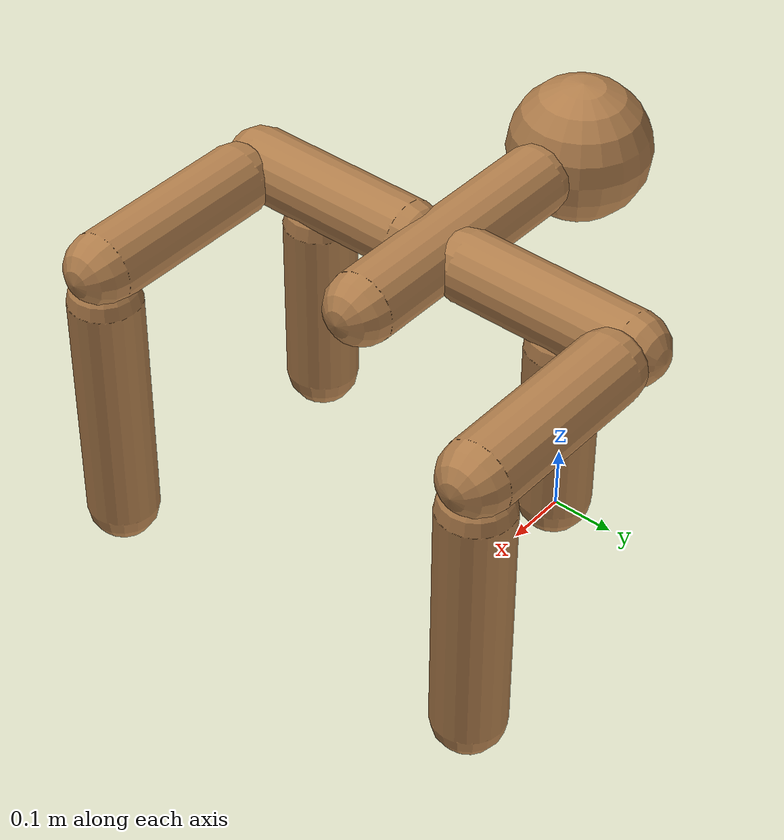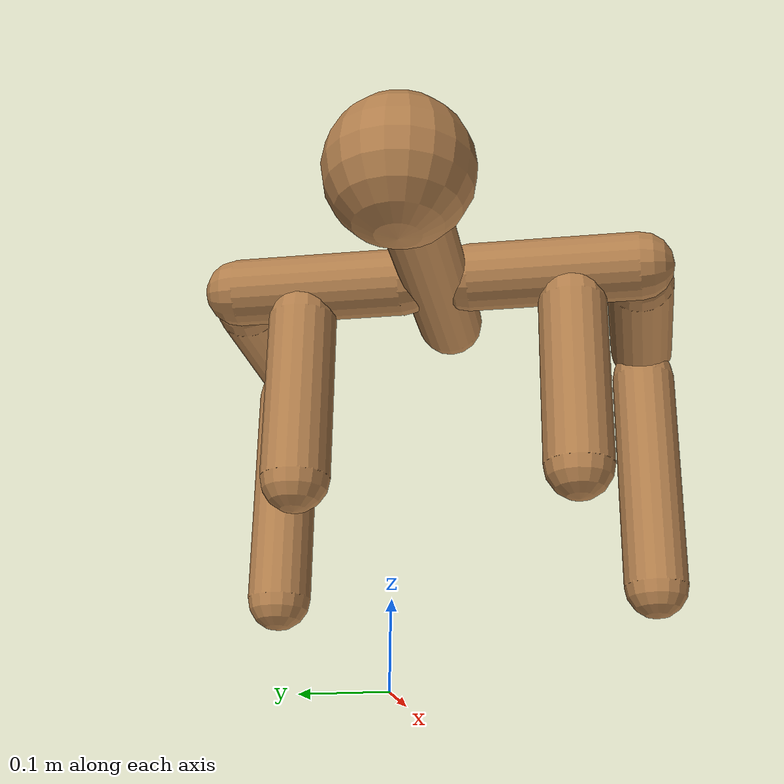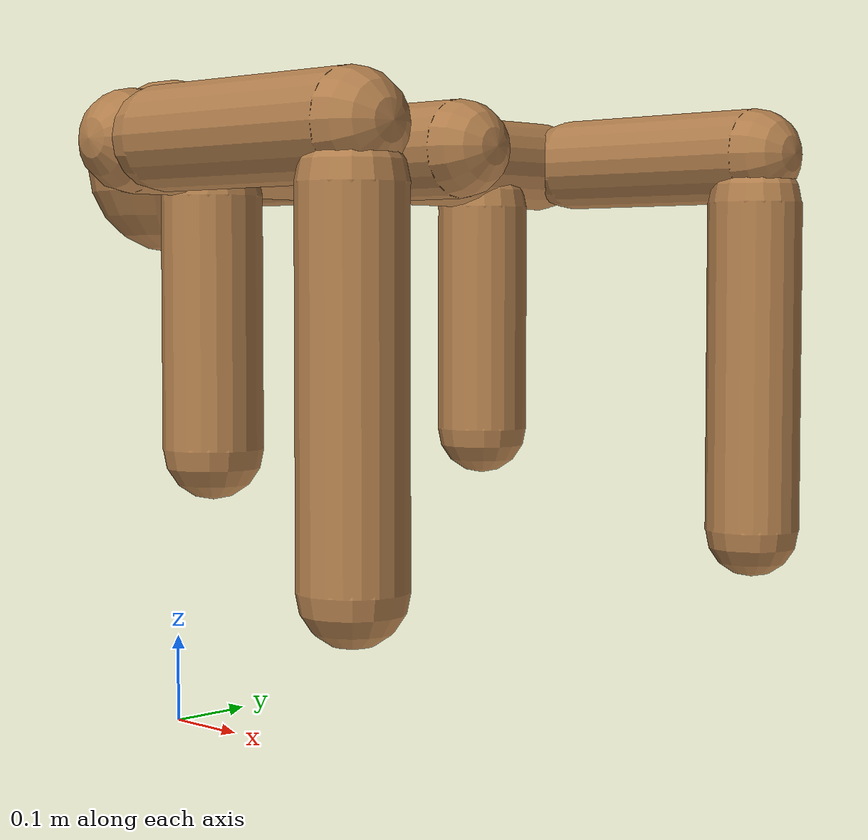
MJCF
<?xml version='1.0' encoding='UTF-8'?>
<!-- Universal Animal Template: unimal -->
<mujoco model="unimal">
  <compiler angle="degree"/>
  <size njmax="2000" nconmax="500"/>
  <option timestep=".005">
    <flag filterparent="disable"/>
  </option>
  <!-- Common defaults to make search space tractable -->
  <default>
    <!-- Define motor defaults -->
    <motor ctrlrange="-1 1" ctrllimited="true"/>
    <!-- Define joint defaults -->
    <default class="normal_joint">
      <joint type="hinge" damping="1" stiffness="1" armature="1" limited="true" range="-120 120" solimplimit="0 0.99 0.01"/>
    </default>
    <default class="walker_joint">
      <joint type="hinge" damping="0.2" stiffness="1" armature=".01" limited="true" range="-120 120" solimplimit="0 0.99 0.01"/>
    </default>
    <default class="stiff_joint">
      <joint type="hinge" damping="5" stiffness="10" armature=".01" limited="true" solimplimit="0 0.99 0.01"/>
    </default>
    <default class="free">
      <joint limited="false" damping="0" armature="0" stiffness="0"/>
    </default>
    <default class="growth_site">
      <site size="1e-6 1e-6 1e-6"/>
    </default>
    <default class="torso_growth_site">
      <site size="1e-6 1e-6 1e-6"/>
    </default>
    <default class="mirror_growth_site">
      <site size="1e-6 1e-6 1e-6"/>
    </default>
    <default class="btm_pos_site">
      <site size="1e-6 1e-6 1e-6"/>
    </default>
    <default class="box_face_site">
      <site size="1e-6 1e-6 1e-6"/>
    </default>
    <default class="imu_vel">
      <site type="box" size="0.05" rgba="1 0 0 0"/>
    </default>
    <default class="touch_site">
      <site group="3" rgba="0 0 1 .3"/>
    </default>
    <default class="food_site">
      <site material="food" size="0.15"/>
    </default>
    <!-- Define geom defaults -->
    <geom type="capsule" condim="3" friction="0.7 0.1 0.1" material="self"/>
  </default>
  <worldbody>
    <light diffuse="1 1 1" directional="true" exponent="1" pos="0 0 8" specular="0.1 0.1 0.1" dir="0 0 -1"/>
    <!-- Programatically generated xml goes here -->
    <body name="torso/0" pos="0 0 0.65">
      <joint name="root" type="free" class="free"/>
      <site name="root" class="imu_vel"/>
      <geom name="torso/0" type="sphere" size="0.1" condim="3" density="1000"/>
      <camera name="side" pos="0 -7 2" xyaxes="1 0 0 0 1 2" mode="trackcom"/>
      <site name="torso/0" class="growth_site" pos="0 0 0"/>
      <site name="torso/btm_pos/0" class="btm_pos_site" pos="0 0 -0.1"/>
      <site name="torso/touch/0" class="touch_site" size="0.11"/>
      <site name="torso/vertical/0" class="torso_growth_site" pos="0 0 -0.1"/>
      <body name="limb/12" pos="0.1 0.0 0.0">
        <joint name="limby/12" type="hinge" class="normal_joint" range="-60 0" pos="-0.05 0.0 0.0" axis="-0.0 1.0 0.0"/>
        <geom name="limb/12" type="capsule" fromto="0.0 0.0 0.0 0.35 0.0 0.0" size="0.05" density="800"/>
        <site name="limb/mid/12" class="growth_site" pos="0.2 0.0 0.0"/>
        <site name="limb/btm/12" class="growth_site" pos="0.35 0.0 0.0"/>
        <site name="limb/btm_pos/12" class="btm_pos_site" pos="0.35 0.0 0.0"/>
        <site name="limb/touch/12" class="touch_site" size="0.060000000000000005" fromto="0.0 0.0 0.0 0.35 0.0 0.0" type="capsule"/>
        <body name="limb/15" pos="0.2 0.05 0.0">
          <joint name="limby/15" type="hinge" class="normal_joint" range="-45 0" pos="0.0 -0.05 0.0" axis="0.0 0.0 1.0"/>
          <geom name="limb/15" type="capsule" fromto="0.0 0.0 0.0 0.0 0.25 0.0" size="0.05" density="800"/>
          <site name="limb/mid/15" class="mirror_growth_site" pos="0.0 0.15 0.0"/>
          <site name="limb/btm/15" class="mirror_growth_site" pos="0.0 0.25 0.0"/>
          <site name="limb/btm_pos/15" class="btm_pos_site" pos="0.0 0.25 0.0"/>
          <site name="limb/touch/15" class="touch_site" size="0.060000000000000005" fromto="0.0 0.0 0.0 0.0 0.25 0.0" type="capsule"/>
          <body name="limb/21" pos="0.05 0.25 0.0">
            <joint name="limbx/21" type="hinge" class="normal_joint" range="-60 60" pos="-0.05 0.0 0.0" axis="0.0 0.0 1.0"/>
            <joint name="limby/21" type="hinge" class="normal_joint" range="0 90" pos="-0.05 0.0 0.0" axis="-0.0 1.0 0.0"/>
            <geom name="limb/21" type="capsule" fromto="0.0 0.0 0.0 0.25 0.0 0.0" size="0.05" density="800"/>
            <site name="limb/mid/21" class="mirror_growth_site" pos="0.15 0.0 0.0"/>
            <site name="limb/btm/21" class="mirror_growth_site" pos="0.25 0.0 0.0"/>
            <site name="limb/btm_pos/21" class="btm_pos_site" pos="0.25 0.0 0.0"/>
            <site name="limb/touch/21" class="touch_site" size="0.060000000000000005" fromto="0.0 0.0 0.0 0.25 0.0 0.0" type="capsule"/>
            <body name="limb/23" pos="0.25 0.0 -0.05">
              <joint name="limbx/23" type="hinge" class="normal_joint" range="-60 30" pos="0.0 0.0 0.05" axis="1.0 0.0 0.0"/>
              <joint name="limby/23" type="hinge" class="normal_joint" range="0 60" pos="0.0 0.0 0.05" axis="0.0 1.0 0.0"/>
              <geom name="limb/23" type="capsule" fromto="0.0 0.0 0.0 0.0 0.0 -0.35" size="0.05" density="800"/>
              <site name="limb/mid/23" class="mirror_growth_site" pos="0.0 0.0 -0.2"/>
              <site name="limb/btm/23" class="mirror_growth_site" pos="0.0 0.0 -0.35"/>
              <site name="limb/btm_pos/23" class="btm_pos_site" pos="0.0 0.0 -0.4"/>
              <site name="limb/touch/23" class="touch_site" size="0.060000000000000005" fromto="0.0 0.0 0.0 0.0 0.0 -0.35" type="capsule"/>
            </body>
          </body>
          <body name="limb/25" pos="0.0 0.15 -0.05">
            <joint name="limbx/25" type="hinge" class="normal_joint" range="-60 0" pos="0.0 0.0 0.05" axis="1.0 0.0 0.0"/>
            <geom name="limb/25" type="capsule" fromto="0.0 0.0 0.0 0.0 0.0 -0.25" size="0.05" density="800"/>
            <site name="limb/mid/25" class="mirror_growth_site" pos="0.0 0.0 -0.15"/>
            <site name="limb/btm/25" class="mirror_growth_site" pos="0.0 0.0 -0.25"/>
            <site name="limb/btm_pos/25" class="btm_pos_site" pos="0.0 0.0 -0.3"/>
            <site name="limb/touch/25" class="touch_site" size="0.060000000000000005" fromto="0.0 0.0 0.0 0.0 0.0 -0.25" type="capsule"/>
          </body>
        </body>
        <body name="limb/16" pos="0.2 -0.05 0.0">
          <joint name="limby/16" type="hinge" class="normal_joint" range="-45 0" pos="0.0 0.05 0.0" axis="-0.0 0.0 -1.0"/>
          <geom name="limb/16" type="capsule" fromto="0.0 0.0 0.0 0.0 -0.25 0.0" size="0.05" density="800"/>
          <site name="limb/mid/16" class="mirror_growth_site" pos="0.0 -0.15 0.0"/>
          <site name="limb/btm/16" class="mirror_growth_site" pos="0.0 -0.25 0.0"/>
          <site name="limb/btm_pos/16" class="btm_pos_site" pos="0.0 -0.25 0.0"/>
          <site name="limb/touch/16" class="touch_site" size="0.060000000000000005" fromto="0.0 0.0 0.0 0.0 -0.25 0.0" type="capsule"/>
          <body name="limb/22" pos="0.05 -0.25 0.0">
            <joint name="limbx/22" type="hinge" class="normal_joint" range="-60 60" pos="-0.05 0.0 0.0" axis="0.0 0.0 1.0"/>
            <joint name="limby/22" type="hinge" class="normal_joint" range="0 90" pos="-0.05 0.0 0.0" axis="-0.0 1.0 0.0"/>
            <geom name="limb/22" type="capsule" fromto="0.0 0.0 0.0 0.25 0.0 0.0" size="0.05" density="800"/>
            <site name="limb/mid/22" class="mirror_growth_site" pos="0.15 0.0 0.0"/>
            <site name="limb/btm/22" class="mirror_growth_site" pos="0.25 0.0 0.0"/>
            <site name="limb/btm_pos/22" class="btm_pos_site" pos="0.25 0.0 0.0"/>
            <site name="limb/touch/22" class="touch_site" size="0.060000000000000005" fromto="0.0 0.0 0.0 0.25 0.0 0.0" type="capsule"/>
            <body name="limb/24" pos="0.25 0.0 -0.05">
              <joint name="limbx/24" type="hinge" class="normal_joint" range="-60 30" pos="0.0 0.0 0.05" axis="1.0 0.0 0.0"/>
              <joint name="limby/24" type="hinge" class="normal_joint" range="0 60" pos="0.0 0.0 0.05" axis="0.0 1.0 0.0"/>
              <geom name="limb/24" type="capsule" fromto="0.0 0.0 0.0 0.0 0.0 -0.35" size="0.05" density="800"/>
              <site name="limb/mid/24" class="mirror_growth_site" pos="0.0 0.0 -0.2"/>
              <site name="limb/btm/24" class="mirror_growth_site" pos="0.0 0.0 -0.35"/>
              <site name="limb/btm_pos/24" class="btm_pos_site" pos="0.0 0.0 -0.4"/>
              <site name="limb/touch/24" class="touch_site" size="0.060000000000000005" fromto="0.0 0.0 0.0 0.0 0.0 -0.35" type="capsule"/>
            </body>
          </body>
          <body name="limb/26" pos="0.0 -0.15 -0.05">
            <joint name="limbx/26" type="hinge" class="normal_joint" range="-60 0" pos="0.0 0.0 0.05" axis="1.0 0.0 0.0"/>
            <geom name="limb/26" type="capsule" fromto="0.0 0.0 0.0 0.0 0.0 -0.25" size="0.05" density="800"/>
            <site name="limb/mid/26" class="mirror_growth_site" pos="0.0 0.0 -0.15"/>
            <site name="limb/btm/26" class="mirror_growth_site" pos="0.0 0.0 -0.25"/>
            <site name="limb/btm_pos/26" class="btm_pos_site" pos="0.0 0.0 -0.3"/>
            <site name="limb/touch/26" class="touch_site" size="0.060000000000000005" fromto="0.0 0.0 0.0 0.0 0.0 -0.25" type="capsule"/>
          </body>
        </body>
      </body>
    </body>
  </worldbody>
  <actuator>
    <motor joint="limby/12" gear="300" name="limby/12"/>
    <motor joint="limby/15" gear="200" name="limby/15"/>
    <motor joint="limbx/21" gear="150" name="limbx/21"/>
    <motor joint="limby/21" gear="300" name="limby/21"/>
    <motor joint="limbx/23" gear="150" name="limbx/23"/>
    <motor joint="limby/23" gear="150" name="limby/23"/>
    <motor joint="limbx/25" gear="300" name="limbx/25"/>
    <motor joint="limby/16" gear="200" name="limby/16"/>
    <motor joint="limbx/22" gear="150" name="limbx/22"/>
    <motor joint="limby/22" gear="300" name="limby/22"/>
    <motor joint="limbx/24" gear="150" name="limbx/24"/>
    <motor joint="limby/24" gear="150" name="limby/24"/>
    <motor joint="limbx/26" gear="300" name="limbx/26"/>
  </actuator>
  <sensor>
    <accelerometer name="torso_accel" site="root"/>
    <gyro name="torso_gyro" site="root"/>
    <velocimeter name="torso_vel" site="root"/>
    <subtreeangmom name="unimal_am" body="torso/0"/>
    <touch name="torso/0" site="torso/touch/0"/>
    <touch name="limb/12" site="limb/touch/12"/>
    <touch name="limb/15" site="limb/touch/15"/>
    <touch name="limb/21" site="limb/touch/21"/>
    <touch name="limb/23" site="limb/touch/23"/>
    <touch name="limb/25" site="limb/touch/25"/>
    <touch name="limb/16" site="limb/touch/16"/>
    <touch name="limb/22" site="limb/touch/22"/>
    <touch name="limb/24" site="limb/touch/24"/>
    <touch name="limb/26" site="limb/touch/26"/>
  </sensor>
  <!-- Add hfield assets -->
  <asset/>
  <!-- List of contacts to exclude -->
  <contact>
    <exclude name="limb/15:limb/16" body1="limb/15" body2="limb/16"/>
  </contact>
  <!-- Define material, texture etc -->
  <asset>
    <material name="grid" texture="grid" texrepeat="1 1" texuniform="true" reflectance="0.1"/>
    <material name="hfield" texture="hfield" texrepeat="1 1" texuniform="true" reflectance="0.1"/>
    <material name="wall" texture="wall" texrepeat="1 1" texuniform="true" reflectance=".5"/>
    <material name="platform" texture="platform" texrepeat="1 1" texuniform="true" reflectance=".5"/>
    <material name="boundary" texture="boundary" texrepeat="1 1" texuniform="true" reflectance=".5"/>
    <material name="jump" texture="jump" texrepeat="1 1" texuniform="true" reflectance=".5"/>
    <material name="goal" rgba="1 0 0 1"/>
    <material name="food" rgba="0 0 1 1" emission="1"/>
    <material name="init_position" rgba="0 1 0 0.7"/>
    <material name="self" rgba=".7 .5 .3 1"/>
    <material name="self_invisible" rgba=".7 .5 .3 0"/>
    <material name="self_default" rgba=".7 .5 .3 1"/>
    <material name="self_highlight" rgba="0 .5 .3 1"/>
    <material name="effector" rgba=".7 .4 .2 1"/>
    <material name="effector_default" rgba=".7 .4 .2 1"/>
    <material name="effector_highlight" rgba="0 .5 .3 1"/>
    <material name="decoration" rgba=".3 .5 .7 1"/>
    <material name="eye" rgba="0 .2 1 1"/>
    <material name="target" rgba=".6 .3 .3 1"/>
    <material name="target_default" rgba=".6 .3 .3 1"/>
    <material name="target_highlight" rgba=".6 .3 .3 .4"/>
    <material name="site" rgba=".5 .5 .5 .3"/>
    <material name="ball" texture="ball"/>
  </asset>
  <asset>
    <texture name="grid" type="2d" builtin="checker" rgb1="0.4 0.4 0.4" rgb2="0.4 0.4 0.4" width="300" height="300" mark="edge" markrgb="0.2 0.2 0.2"/>
    <texture name="hfield" type="2d" builtin="checker" rgb1="0.4 0.4 0.4" rgb2="0.4 0.4 0.4" width="300" height="300" mark="edge" markrgb="0.2 0.2 0.2"/>
    <texture name="wall" type="2d" builtin="flat" rgb1="0.9 0.7 0" rgb2="0.9 0.7 0" width="300" height="300"/>
    <texture name="platform" type="2d" builtin="flat" rgb1="0.3 0 0.8" rgb2="0.3 0 0.8" width="300" height="300"/>
    <texture name="boundary" type="2d" builtin="flat" rgb1="0.3 0.3 0.3" rgb2="0.3 0.3 0.3" width="300" height="300"/>
    <texture name="jump" type="2d" builtin="flat" rgb1="0.3 0.3 0.3" rgb2="0.3 0.3 0.3" width="300" height="300"/>
    <texture name="skybox" type="skybox" builtin="gradient" rgb1="1 1 1" rgb2="0.6 0.6 0.6" width="800" height="800"/>
    <texture name="ball" builtin="checker" mark="cross" width="151" height="151" rgb1="0.1 0.1 0.1" rgb2="0.9 0.9 0.9" markrgb="1 1 1"/>
  </asset>
  <visual>
    <headlight ambient="0.6 0.6 0.6" diffuse="0.3 0.3 0.3" specular="0 0 0"/>
    <map znear=".01" shadowclip="0.5"/>
    <quality shadowsize="16384"/>
  </visual>
</mujoco>
